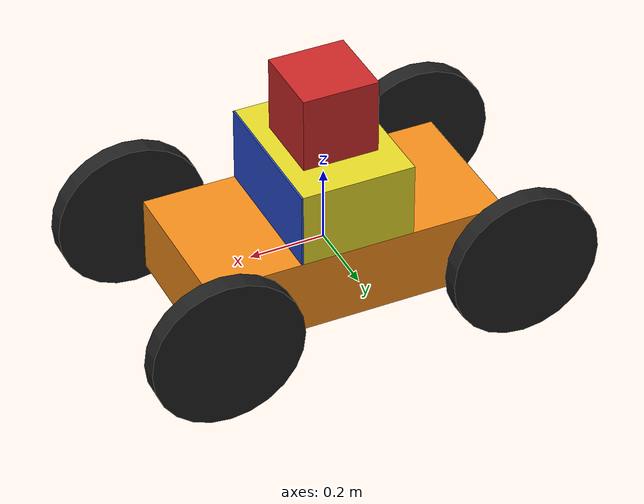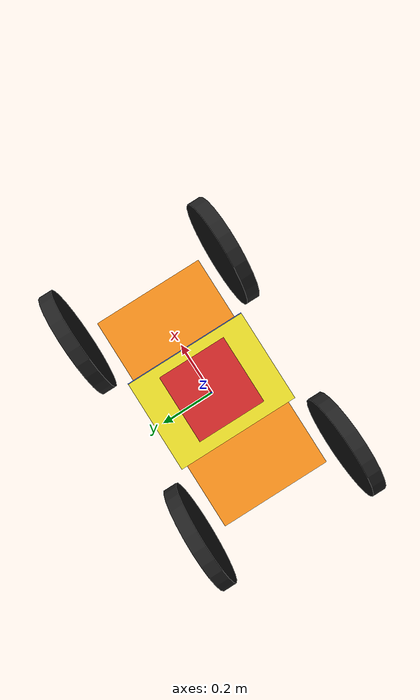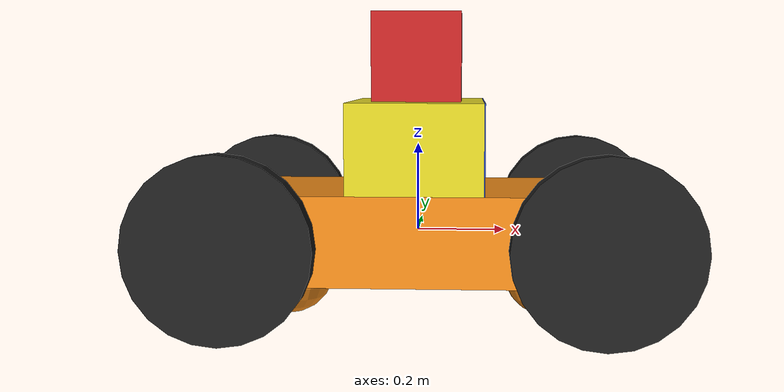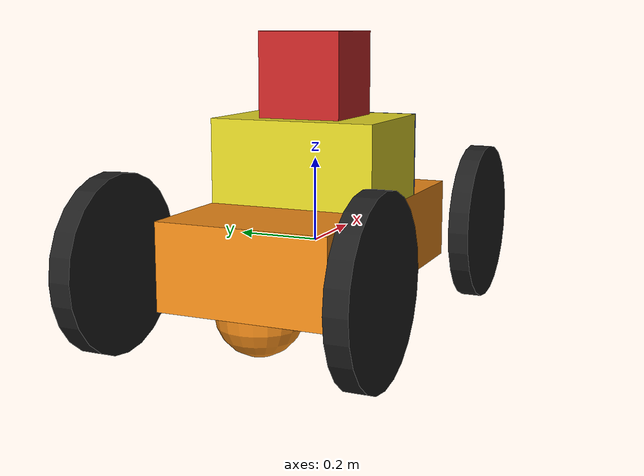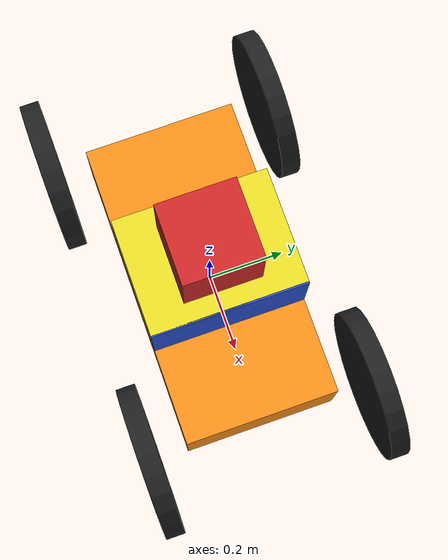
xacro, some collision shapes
<?xml version='1.0'?>

<robot name="my_robot" xmlns:xacro="http://www.ros.org/wiki/xacro">

  <link name="robot_footprint"></link>

  <joint name="robot_footprint_joint" type="fixed">
    <origin xyz="0 0 0" rpy="0 0 0" />
    <parent link="robot_footprint"/>
    <child link="chassis" />
  </joint>

  <link name='chassis'>
    <pose>0 0 0.1 0 0 0</pose>

    <inertial>
      <mass value="15.0"/>
      <origin xyz="0.0 0 0" rpy=" 0 0 0"/>
      <inertia
          ixx="0.1" ixy="0" ixz="0"
          iyy="0.1" iyz="0"
          izz="0.1"
      />
    </inertial>

    <collision name='collision'>
      <origin xyz="0 0 0" rpy=" 0 0 0"/>
      <geometry>
        <box size=".8 .4 .2"/>
      </geometry>
    </collision>

    <visual name='chassis_visual'>
      <origin xyz="0 0 0" rpy=" 0 0 0"/>
      <geometry>
        <box size=".8 .4 .2"/>
      </geometry>
    </visual>

    <collision name='back_caster_collision'>
      <origin xyz="-0.30 0 -0.1" rpy=" 0 0 0"/>
      <geometry>
        <sphere radius="0.1"/>
      </geometry>
    </collision>

    <visual name='back_caster_visual'>
      <origin xyz="-0.30 0 -0.1" rpy=" 0 0 0"/>
      <geometry>
        <sphere radius="0.1"/>
      </geometry>
    </visual>

    <collision name='front_caster_collision'>
      <origin xyz="0.30 0 -0.1" rpy=" 0 0 0"/>
      <geometry>
        <sphere radius="0.1"/>
      </geometry>
    </collision>

    <visual name='front_caster_visual'>
      <origin xyz="0.30 0 -0.1" rpy=" 0 0 0"/>
      <geometry>
        <sphere radius="0.1"/>
      </geometry>
    </visual>

  </link>

 <link name='front_right_wheel'>

    <inertial>
      <mass value="5.0"/>
      <origin xyz="0.0 0 0" rpy=" 0 0 0"/>
      <inertia
          ixx="0.1" ixy="0" ixz="0"
          iyy="0.1" iyz="0"
          izz="0.1"
      />
    </inertial>

    <collision name='front_right_wheel_collision'>
      <origin xyz="0 0 0" rpy=" 0 1.5707 1.5707"/>
      <geometry>
	 <cylinder length="0.05" radius="0.2"/>
      </geometry>
    </collision>

    <visual name='front_right_wheel_visual'>
      <origin xyz="0 0 0" rpy=" 0 1.5707 1.5707"/>
      <geometry>
	 <cylinder length="0.05" radius="0.2"/>
      </geometry>
    </visual>

  </link>

 <link name='front_left_wheel'>

    <inertial>
      <mass value="5.0"/>
      <origin xyz="0.0 0 0" rpy=" 0 0 0"/>
      <inertia
          ixx="0.1" ixy="0" ixz="0"
          iyy="0.1" iyz="0"
          izz="0.1"
      />
    </inertial>

    <collision name='front_left_wheel_collision'>
      <origin xyz="0 0 0" rpy=" 0 1.5707 1.5707"/>
      <geometry>
	 <cylinder length="0.05" radius="0.2"/>
      </geometry>
    </collision>

    <visual name='front_left_wheel_visual'>
      <origin xyz="0 0 0" rpy=" 0 1.5707 1.5707"/>
      <geometry>
	 <cylinder length="0.05" radius="0.2"/>
      </geometry>
    </visual>

  </link>

 <joint type="continuous" name="front_left_wheel_hinge">
    <origin xyz="0.4 0.3 0" rpy="0 0 0"/>
    <child link="front_left_wheel"/>
    <parent link="chassis"/>
    <axis xyz="0 1 0" rpy="0 0 0"/>
    <limit effort="10000" velocity="1000"/>
    <dynamics damping="1.0" friction="1.0"/>
    <commandTopic>cmd_vel</commandTopic>
  </joint>

  <joint type="continuous" name="front_right_wheel_hinge">
    <origin xyz="0.4 -0.3 0" rpy="0 0 0"/>
    <child link="front_right_wheel"/>
    <parent link="chassis"/>
    <axis xyz="0 1 0" rpy="0 0 0"/>
    <limit effort="10000" velocity="1000"/>
    <dynamics damping="1.0" friction="1.0"/>
    <commandTopic>cmd_vel</commandTopic>
  </joint>

 <link name='back_right_wheel'>

    <inertial>
      <mass value="5.0"/>
      <origin xyz="0.0 0 0" rpy=" 0 0 0"/>
      <inertia
          ixx="0.1" ixy="0" ixz="0"
          iyy="0.1" iyz="0"
          izz="0.1"
      />
    </inertial>

    <collision name='back_right_wheel_collision'>
      <origin xyz="0 0 0" rpy=" 0 1.5707 1.5707"/>
      <geometry>
	 <cylinder length="0.05" radius="0.2"/>
      </geometry>
    </collision>

    <visual name='back_right_wheel_visual'>
      <origin xyz="0 0 0" rpy=" 0 1.5707 1.5707"/>
      <geometry>
	 <cylinder length="0.05" radius="0.2"/>
      </geometry>
    </visual>

  </link>

 <link name='back_left_wheel'>

    <inertial>
      <mass value="5.0"/>
      <origin xyz="0.0 0 0" rpy=" 0 0 0"/>
      <inertia
          ixx="0.1" ixy="0" ixz="0"
          iyy="0.1" iyz="0"
          izz="0.1"
      />
    </inertial>

    <collision name='back_left_wheel_collision'>
      <origin xyz="0 0 0" rpy=" 0 1.5707 1.5707"/>
      <geometry>
	 <cylinder length="0.05" radius="0.2"/>
      </geometry>
    </collision>

    <visual name='back_left_wheel_visual'>
      <origin xyz="0 0 0" rpy=" 0 1.5707 1.5707"/>
      <geometry>
	 <cylinder length="0.05" radius="0.2"/>
      </geometry>
    </visual>

  </link>

 <joint type="continuous" name="back_left_wheel_hinge">
    <origin xyz="-0.4 0.3 0" rpy="0 0 0"/>
    <child link="back_left_wheel"/>
    <parent link="chassis"/>
    <axis xyz="0 1 0" rpy="0 0 0"/>
    <limit effort="10000" velocity="1000"/>
    <dynamics damping="1.0" friction="1.0"/>
    <commandTopic>cmd_vel</commandTopic>
  </joint>

  <joint type="continuous" name="back_right_wheel_hinge">
    <origin xyz="-0.4 -0.3 0" rpy="0 0 0"/>
    <child link="back_right_wheel"/>
    <parent link="chassis"/>
    <axis xyz="0 1 0" rpy="0 0 0"/>
    <limit effort="10000" velocity="1000"/>
    <dynamics damping="1.0" friction="1.0"/>
    <commandTopic>cmd_vel</commandTopic>
  </joint>

<link name='cabin'>

    <inertial>
      <mass value="7.5"/>
      <origin xyz="0.0 0 0" rpy=" 0 0 0"/>
      <inertia
          ixx="0.05" ixy="0" ixz="0"
          iyy="0.05" iyz="0"
          izz="0.05"
      />
    </inertial>

    <collision name='cabin_collision'>
      <origin xyz="0 0 0" rpy=" 0 0 0"/>
      <geometry>
        <box size=".3 .4 .2"/>
      </geometry>
    </collision>y

    <visual name='cabin_visual'>
      <origin xyz="0 0 0" rpy=" 0 0 0 "/>
      <geometry>
        <box size=".3 .4 .2"/>
      </geometry>
    </visual>

  </link>

  <joint name="cabin_joint" type="fixed">
    <origin xyz="0 0 0.2" rpy="0 0 0" />
    <parent link="chassis"/>
    <child link="cabin" />
  </joint>

 <link name='camera'>
     <origin xyz="0.0 0 0" rpy=" 0 0 0"/>

    <inertial>
      <mass value=".1"/>
      <origin xyz="0.05 0.05 0.05" rpy=" 0 0 0"/>
      <inertia
          ixx="1e-6" ixy="0" ixz="0"
          iyy="1e-6" iyz="0"
          izz="1e-6"
      />
    </inertial>

     <collision name='camera_collision'>
      <origin xyz="0 0 0" rpy=" 0 0 0"/>
      <geometry>
        <box size=".005 .4 .2"/>
      </geometry>
    </collision>

    <visual name='camera_visual'>
      <origin xyz="0 0 0" rpy=" 0 0 0"/>
      <geometry>
        <box size=".005 .4 .2"/>
      </geometry>
    </visual>
  <imageTopicName>rgb/image_raw</imageTopicName>
  </link>

  <joint type="fixed" name="camera_joint">
    <origin xyz="0.15 0 0" rpy="0 0 0"/>
    <child link="camera"/>
    <parent link="cabin"/>
    <axis xyz="0 1 0" rpy="0 0 0"/>
    <limit effort="10000" velocity="1000"/>
    <dynamics damping="1.0" friction="1.0"/>
  </joint>

 <link name='hokuyo'>
     <origin xyz="0.0 0 0" rpy=" 0 0 0"/>

    <inertial>
      <mass value="1e-5"/>
      <origin xyz="0 0 0" rpy=" 0 0 0"/>
      <inertia
          ixx="1e-6" ixy="0" ixz="0"
          iyy="1e-6" iyz="0"
          izz="1e-6"
      />
    </inertial>

     <collision name='hokuyo_collision'>
      <origin xyz="0 0 0" rpy=" 0 0 0"/>
      <geometry>
        <box size=".2 .2 .2"/>
      </geometry>
    </collision>

    <visual name='hokuyo_visual'>
      <origin xyz="0 0 0" rpy=" 0 0 0"/>
      <geometry>
	 <mesh filename = "package://my_robot/meshes/hokuyo.dae"/>
      </geometry>
    </visual>
   <topicName>/scan</topicName>

  </link>

  <joint type="fixed" name="hokuyo_joint">
    <origin xyz="0 0 0.2" rpy="0 0 0"/>
    <child link="hokuyo"/>
    <parent link="cabin"/>
    <axis xyz="0 1 0" rpy="0 0 0"/>
    <limit effort="10000" velocity="1000"/>
    <dynamics damping="1.0" friction="1.0"/>
  </joint>

<gazebo reference="front_left_wheel">
    <material>Gazebo/Black</material>
</gazebo>

<gazebo reference="front_right_wheel">
    <material>Gazebo/Black</material>
</gazebo>

<gazebo reference="back_left_wheel">
    <material>Gazebo/Black</material>
</gazebo>

<gazebo reference="back_right_wheel">
    <material>Gazebo/Black</material>
</gazebo>

<gazebo reference="chassis">
    <material>Gazebo/Orange</material>
</gazebo>

<gazebo reference="cabin">
    <material>Gazebo/Yellow</material>
</gazebo>

<gazebo reference="camera">
    <material>Gazebo/Blue</material>
</gazebo>

<gazebo reference="hokuyo">
    <material>Gazebo/Red</material>
</gazebo>
</robot>
